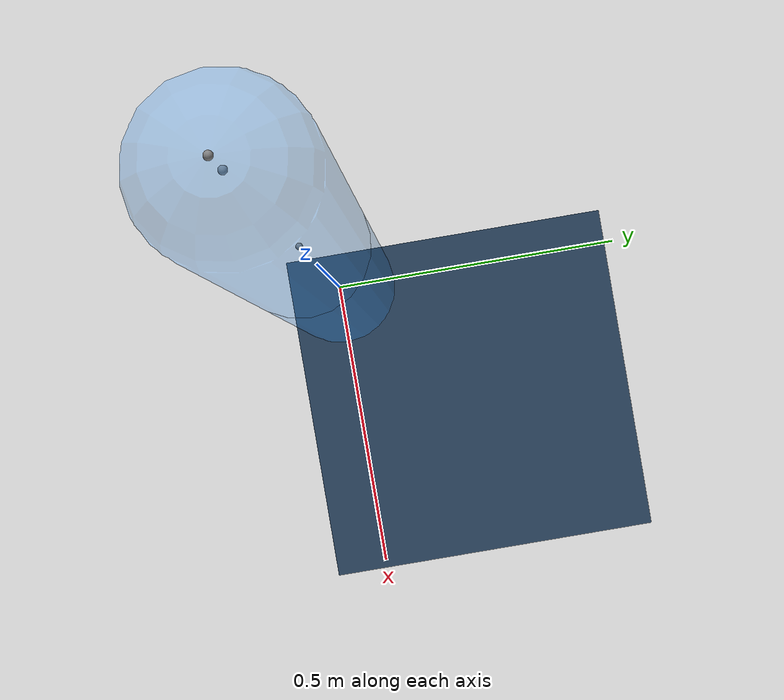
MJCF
<mujoco model="2dof_arm">
    <compiler angle="radian"/>

    <!-- Background texture -->
    <asset>
        <texture name="grid" type="2d" builtin="checker" rgb1=".1 .2 .3"
        rgb2=".2 .3 .4" width="100" height="100"/>
        <material name="grid" texture="grid" texrepeat="8 8" reflectance=".2"/>
    </asset>

    <worldbody>
        <camera pos="0.065 -6.146 0.321" xyaxes="1.000 0.011 0.000 -0.001 0.093 0.996"/>
        <!-- Place background -->
        <geom size="2 2 .01" pos="0 0 -2" type="plane" material="grid"/>
        <!-- Static light -->
        <light pos="0 0 3" dir="0 0 -1"/>
        <light pos="0 -3 0" dir="0 1 0" directional="true"/>

        <!-- First Link -->
        <body name="pendulum_stick1" pos="0 0 0">
            <joint name="hinge1" type="hinge" axis="0 1 0" pos="0 0 0" range="-1.57 1.57"/>
            <!-- Only for visuals -->
            <geom name="visual_capsule1" type="capsule" fromto="0 0 0 0 0 0.8" size="0.1" rgba="0.2 0.6 1.0 0.3"/>

            <!-- Mass on the end of the pendulum -->
            <inertial mass="0.1" diaginertia="2e-3 2e-3 2e-3" pos="0 0 0.8"/>
            <site pos="0 0 0.8" name="j_1"/>

            <!-- Second Link -->
            <body name="pendulum_stick2" pos="0 0 0.8">
                <joint name="hinge2" type="hinge" axis="0 1 0" pos="0 0 0" range="-3.142 3.142"/>
                <!-- Only for visuals -->
                <geom name="visual_capsule2" type="capsule" fromto="0 0 0 0 0 0.8" size="0.1" rgba="0.2 0.6 1.0 0.3"/>

                <!-- Mass on the end of the pendulum -->
                <inertial mass="0.1" diaginertia="2e-3 2e-3 2e-3" pos="0 0 0.8"/>
                 <site pos="0 0 0.8" name="j_2"/>
                <site pos="0 0 0.9" name="attachment_site"/>
            </body>
        </body>
    </worldbody>

    <!-- Force actuator on the cart -->
    <actuator>
        <general joint="hinge1"/>
        <general joint="hinge2"/>
    </actuator>

</mujoco>
